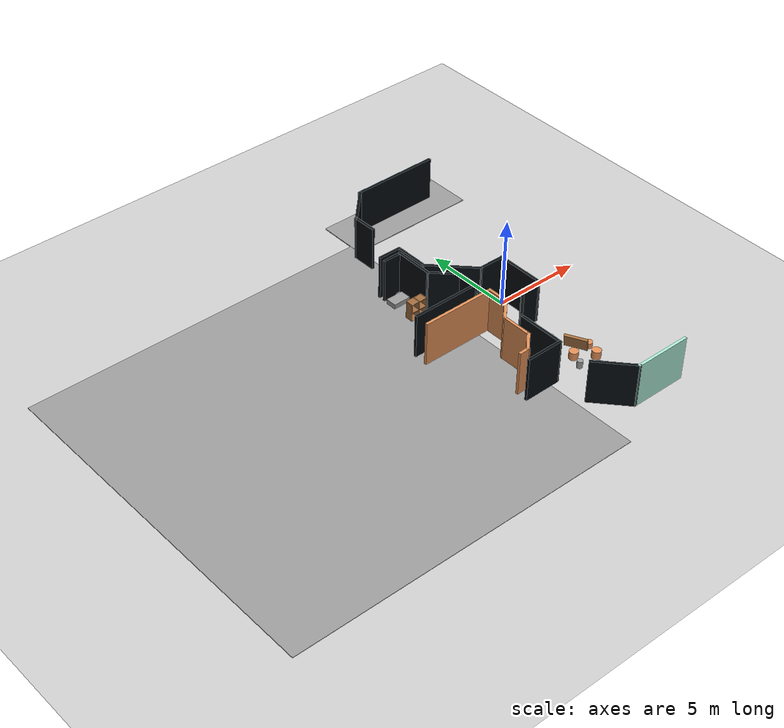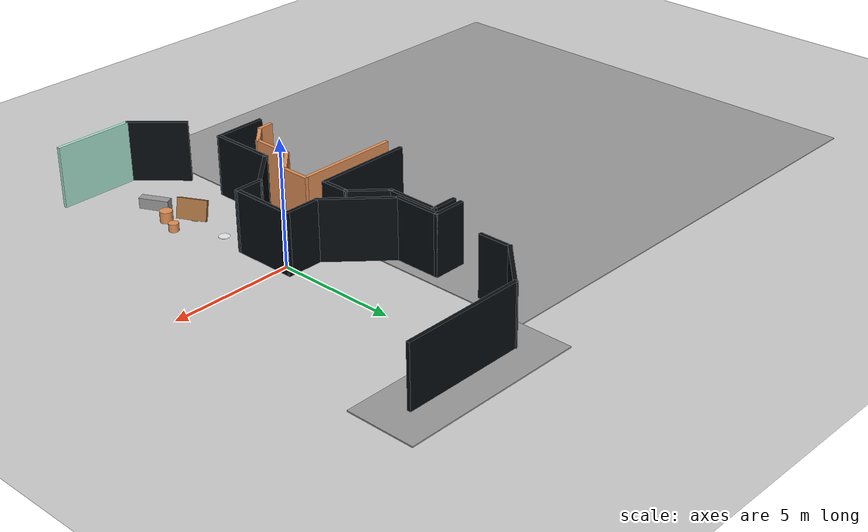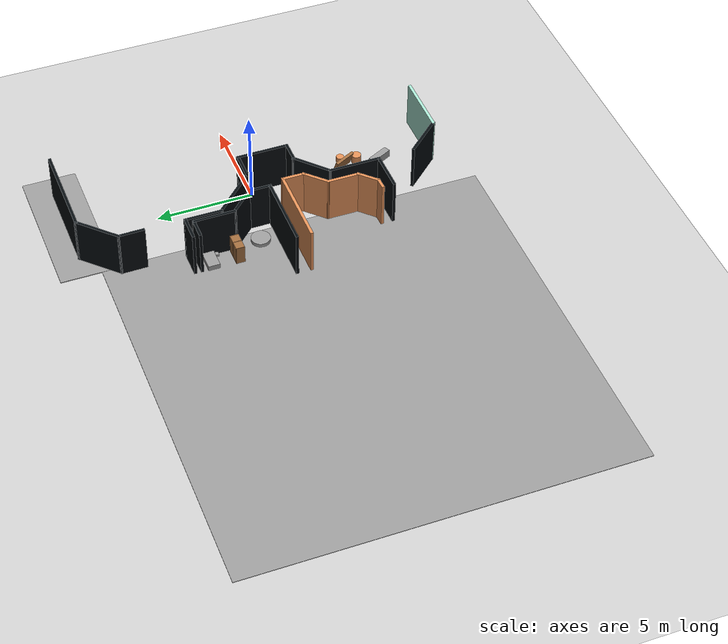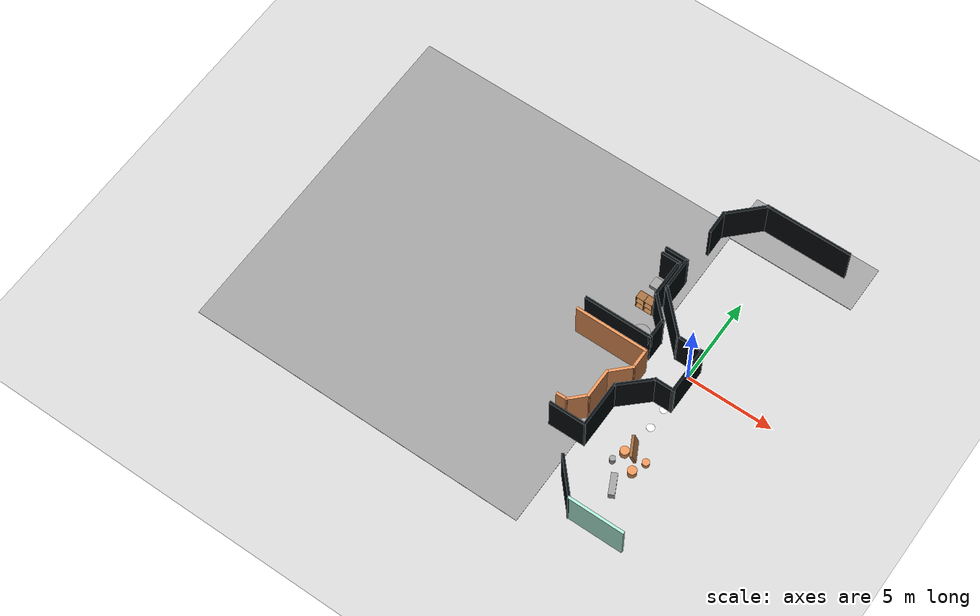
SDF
<sdf version="1.7">
 <world name="default">
  <model name="ground_plane">
   <static>1</static>
   <link name="link">
    <collision name="collision">
     <geometry><plane><normal>0 0 1</normal><size>100 100</size></plane></geometry>
     <surface><friction><ode><mu>100</mu><mu2>50</mu2></ode></friction></surface>
    </collision>
    <visual name="visual">
     <cast_shadows>0</cast_shadows>
     <geometry><plane><normal>0 0 1</normal><size>100 100</size></plane></geometry>
     <material>
      <script><uri>file://media/materials/scripts/gazebo.material</uri><name>Gazebo/Grey</name></script>
      <ambient>0.55 0.55 0.53 1</ambient>
      <diffuse>0.55 0.55 0.53 1</diffuse>
      <specular>0.08 0.08 0.08 1</specular>
      <emissive>0 0 0 1</emissive>
     </material>
    </visual>
   </link>
  </model>
  <model name="among_us_world">
   <pose>0.133216 -0.12311 0 0 -0 0</pose>
   <link name="Wall_0">
    <collision name="Wall_0_Collision">
     <geometry><box><size>5 0.15 2.5</size></box></geometry>
     <pose>0 0 1.25 0 -0 0</pose>
    </collision>
    <visual name="Wall_0_Visual">
     <pose>0 0 1.25 0 -0 0</pose>
     <geometry><box><size>5 0.15 2.5</size></box></geometry>
     <material>
      <script><uri>file://media/materials/scripts/gazebo.material</uri><name>Gazebo/Motorway</name></script>
      <ambient>0.025 0.045 0.06 1</ambient>
      <diffuse>0.025 0.045 0.06 1</diffuse>
      <specular>0.08 0.08 0.08 1</specular>
      <emissive>0 0 0 1</emissive>
     </material>
     <meta><layer>0</layer></meta>
    </visual>
    <pose>0.883234 9.56872 0 0 -0 0</pose>
   </link>
   <link name="Wall_104">
    <collision name="Wall_104_Collision">
     <geometry><box><size>4 0.15 2.5</size></box></geometry>
     <pose>0 0 1.25 0 -0 0</pose>
    </collision>
    <visual name="Wall_104_Visual">
     <pose>0 0 1.25 0 -0 0</pose>
     <geometry><box><size>4 0.15 2.5</size></box></geometry>
     <material>
      <script><uri>file://media/materials/scripts/gazebo.material</uri><name>Gazebo/Motorway</name></script>
      <ambient>0.025 0.045 0.06 1</ambient>
      <diffuse>0.025 0.045 0.06 1</diffuse>
      <specular>0.08 0.08 0.08 1</specular>
      <emissive>0 0 0 1</emissive>
     </material>
     <meta><layer>0</layer></meta>
    </visual>
    <pose>-4.28169 -0.147272 0 0 -0 0</pose>
   </link>
   <link name="Wall_105">
    <collision name="Wall_105_Collision">
     <geometry><box><size>1.25 0.15 2.5</size></box></geometry>
     <pose>0 0 1.25 0 -0 0</pose>
    </collision>
    <visual name="Wall_105_Visual">
     <pose>0 0 1.25 0 -0 0</pose>
     <geometry><box><size>1.25 0.15 2.5</size></box></geometry>
     <material>
      <script><uri>file://media/materials/scripts/gazebo.material</uri><name>Gazebo/Motorway</name></script>
      <ambient>0.025 0.045 0.06 1</ambient>
      <diffuse>0.025 0.045 0.06 1</diffuse>
      <specular>0.08 0.08 0.08 1</specular>
      <emissive>0 0 0 1</emissive>
     </material>
     <meta><layer>0</layer></meta>
    </visual>
    <pose>-2.35669 0.402728 0 0 -0 1.5708</pose>
   </link>
   <link name="Wall_106">
    <collision name="Wall_106_Collision">
     <geometry><box><size>1.75 0.15 2.5</size></box></geometry>
     <pose>0 0 1.25 0 -0 0</pose>
    </collision>
    <visual name="Wall_106_Visual">
     <pose>0 0 1.25 0 -0 0</pose>
     <geometry><box><size>1.75 0.15 2.5</size></box></geometry>
     <material>
      <script><uri>file://media/materials/scripts/gazebo.material</uri><name>Gazebo/Motorway</name></script>
      <ambient>0.025 0.045 0.06 1</ambient>
      <diffuse>0.025 0.045 0.06 1</diffuse>
      <specular>0.08 0.08 0.08 1</specular>
      <emissive>0 0 0 1</emissive>
     </material>
     <meta><layer>0</layer></meta>
    </visual>
    <pose>-2.92238 1.51841 0 0 -0 2.35619</pose>
   </link>
   <link name="Wall_108">
    <collision name="Wall_108_Collision">
     <geometry><box><size>2.25 0.15 2.5</size></box></geometry>
     <pose>0 0 1.25 0 -0 0</pose>
    </collision>
    <visual name="Wall_108_Visual">
     <pose>0 0 1.25 0 -0 0</pose>
     <geometry><box><size>2.25 0.15 2.5</size></box></geometry>
     <material>
      <script><uri>file://media/materials/scripts/gazebo.material</uri><name>Gazebo/Motorway</name></script>
      <ambient>0.025 0.045 0.06 1</ambient>
      <diffuse>0.025 0.045 0.06 1</diffuse>
      <specular>0.08 0.08 0.08 1</specular>
      <emissive>0 0 0 1</emissive>
     </material>
     <meta><layer>0</layer></meta>
    </visual>
    <pose>-3.48806 3.1341 0 0 -0 1.5708</pose>
   </link>
   <link name="Wall_109">
    <collision name="Wall_109_Collision">
     <geometry><box><size>1.12677 0.15 2.5</size></box></geometry>
     <pose>0 0 1.25 0 -0 0</pose>
    </collision>
    <visual name="Wall_109_Visual">
     <pose>0 0 1.25 0 -0 0</pose>
     <geometry><box><size>1.12677 0.15 2.5</size></box></geometry>
     <material>
      <script><uri>file://media/materials/scripts/gazebo.material</uri><name>Gazebo/Motorway</name></script>
      <ambient>0.025 0.045 0.06 1</ambient>
      <diffuse>0.025 0.045 0.06 1</diffuse>
      <specular>0.08 0.08 0.08 1</specular>
      <emissive>0 0 0 1</emissive>
     </material>
     <meta><layer>0</layer></meta>
    </visual>
    <pose>-3.97634 4.1841 0 0 -0 3.14159</pose>
   </link>
   <link name="Wall_111">
    <collision name="Wall_111_Collision">
     <geometry><box><size>1.37673 0.15 2.5</size></box></geometry>
     <pose>0 0 1.25 0 -0 0</pose>
    </collision>
    <visual name="Wall_111_Visual">
     <pose>0 0 1.25 0 -0 0</pose>
     <geometry><box><size>1.37673 0.15 2.5</size></box></geometry>
     <material>
      <script><uri>file://media/materials/scripts/gazebo.material</uri><name>Gazebo/Motorway</name></script>
      <ambient>0.025 0.045 0.06 1</ambient>
      <diffuse>0.025 0.045 0.06 1</diffuse>
      <specular>0.08 0.08 0.08 1</specular>
      <emissive>0 0 0 1</emissive>
     </material>
     <meta><layer>0</layer></meta>
    </visual>
    <pose>-3.85134 4.5341 0 0 -0 0</pose>
   </link>
   <link name="Wall_112">
    <collision name="Wall_112_Collision">
     <geometry><box><size>2 0.15 2.5</size></box></geometry>
     <pose>0 0 1.25 0 -0 0</pose>
    </collision>
    <visual name="Wall_112_Visual">
     <pose>0 0 1.25 0 -0 0</pose>
     <geometry><box><size>2 0.15 2.5</size></box></geometry>
     <material>
      <script><uri>file://media/materials/scripts/gazebo.material</uri><name>Gazebo/Motorway</name></script>
      <ambient>0.025 0.045 0.06 1</ambient>
      <diffuse>0.025 0.045 0.06 1</diffuse>
      <specular>0.08 0.08 0.08 1</specular>
      <emissive>0 0 0 1</emissive>
     </material>
     <meta><layer>0</layer></meta>
    </visual>
    <pose>-3.23806 3.6091 0 0 -0 -1.5708</pose>
   </link>
   <link name="Wall_114">
    <collision name="Wall_114_Collision">
     <geometry><box><size>3 0.15 2.5</size></box></geometry>
     <pose>0 0 1.25 0 -0 0</pose>
    </collision>
    <visual name="Wall_114_Visual">
     <pose>0 0 1.25 0 -0 0</pose>
     <geometry><box><size>3 0.15 2.5</size></box></geometry>
     <material>
      <script><uri>file://media/materials/scripts/gazebo.material</uri><name>Gazebo/Motorway</name></script>
      <ambient>0.025 0.045 0.06 1</ambient>
      <diffuse>0.025 0.045 0.06 1</diffuse>
      <specular>0.08 0.08 0.08 1</specular>
      <emissive>0 0 0 1</emissive>
     </material>
     <meta><layer>0</layer></meta>
    </visual>
    <pose>-2.23043 1.67647 0 0 -0 -0.785398</pose>
   </link>
   <link name="Wall_115">
    <collision name="Wall_115_Collision">
     <geometry><box><size>1.5655 0.15 2.5</size></box></geometry>
     <pose>0 0 1.25 0 -0 0</pose>
    </collision>
    <visual name="Wall_115_Visual">
     <pose>0 0 1.25 0 -0 0</pose>
     <geometry><box><size>1.5655 0.15 2.5</size></box></geometry>
     <material>
      <script><uri>file://media/materials/scripts/gazebo.material</uri><name>Gazebo/Motorway</name></script>
      <ambient>0.025 0.045 0.06 1</ambient>
      <diffuse>0.025 0.045 0.06 1</diffuse>
      <specular>0.08 0.08 0.08 1</specular>
      <emissive>0 0 0 1</emissive>
     </material>
     <meta><layer>0</layer></meta>
    </visual>
    <pose>-0.515099 0.662156 0 0 -0 -0.00945</pose>
   </link>
   <link name="Wall_116">
    <collision name="Wall_116_Collision">
     <geometry><box><size>2.75 0.15 2.5</size></box></geometry>
     <pose>0 0 1.25 0 -0 0</pose>
    </collision>
    <visual name="Wall_116_Visual">
     <pose>0 0 1.25 0 -0 0</pose>
     <geometry><box><size>2.75 0.15 2.5</size></box></geometry>
     <material>
      <script><uri>file://media/materials/scripts/gazebo.material</uri><name>Gazebo/Motorway</name></script>
      <ambient>0.025 0.045 0.06 1</ambient>
      <diffuse>0.025 0.045 0.06 1</diffuse>
      <specular>0.08 0.08 0.08 1</specular>
      <emissive>0 0 0 1</emissive>
     </material>
     <meta><layer>0</layer></meta>
    </visual>
    <pose>0.19261 -0.637844 0 0 -0 -1.5708</pose>
   </link>
   <link name="Wall_146">
    <collision name="Wall_146_Collision">
     <geometry><box><size>4.25 0.15 2.5</size></box></geometry>
     <pose>0 0 1.25 0 -0 0</pose>
    </collision>
    <visual name="Wall_146_Visual">
     <pose>0 0 1.25 0 -0 0</pose>
     <geometry><box><size>4.25 0.15 2.5</size></box></geometry>
     <material>
      <script><uri>file://media/materials/scripts/gazebo.material</uri><name>Gazebo/Motorway</name></script>
      <ambient>0.88 0.56 0.34 1</ambient>
      <diffuse>0.88 0.56 0.34 1</diffuse>
      <specular>0.08 0.08 0.08 1</specular>
      <emissive>0 0 0 1</emissive>
     </material>
     <meta><layer>0</layer></meta>
    </visual>
    <pose>-4.16277 -0.905283 0 0 -0 0</pose>
   </link>
   <link name="Wall_147">
    <collision name="Wall_147_Collision">
     <geometry><box><size>1.25 0.15 2.5</size></box></geometry>
     <pose>0 0 1.25 0 -0 0</pose>
    </collision>
    <visual name="Wall_147_Visual">
     <pose>0 0 1.25 0 -0 0</pose>
     <geometry><box><size>1.25 0.15 2.5</size></box></geometry>
     <material>
      <script><uri>file://media/materials/scripts/gazebo.material</uri><name>Gazebo/Motorway</name></script>
      <ambient>0.88 0.56 0.34 1</ambient>
      <diffuse>0.88 0.56 0.34 1</diffuse>
      <specular>0.08 0.08 0.08 1</specular>
      <emissive>0 0 0 1</emissive>
     </material>
     <meta><layer>0</layer></meta>
    </visual>
    <pose>-2.11277 -1.45528 0 0 -0 -1.5708</pose>
   </link>
   <link name="Wall_148">
    <collision name="Wall_148_Collision">
     <geometry><box><size>1.5 0.15 2.5</size></box></geometry>
     <pose>0 0 1.25 0 -0 0</pose>
    </collision>
    <visual name="Wall_148_Visual">
     <pose>0 0 1.25 0 -0 0</pose>
     <geometry><box><size>1.5 0.15 2.5</size></box></geometry>
     <material>
      <script><uri>file://media/materials/scripts/gazebo.material</uri><name>Gazebo/Motorway</name></script>
      <ambient>0.88 0.56 0.34 1</ambient>
      <diffuse>0.88 0.56 0.34 1</diffuse>
      <specular>0.08 0.08 0.08 1</specular>
      <emissive>0 0 0 1</emissive>
     </material>
     <meta><layer>0</layer></meta>
    </visual>
    <pose>-2.59027 -2.48228 0 0 -0 -2.35672</pose>
   </link>
   <link name="Wall_149">
    <collision name="Wall_149_Collision">
     <geometry><box><size>1.75 0.15 2.5</size></box></geometry>
     <pose>0 0 1.25 0 -0 0</pose>
    </collision>
    <visual name="Wall_149_Visual">
     <pose>0 0 1.25 0 -0 0</pose>
     <geometry><box><size>1.75 0.15 2.5</size></box></geometry>
     <material>
      <script><uri>file://media/materials/scripts/gazebo.material</uri><name>Gazebo/Motorway</name></script>
      <ambient>0.88 0.56 0.34 1</ambient>
      <diffuse>0.88 0.56 0.34 1</diffuse>
      <specular>0.08 0.08 0.08 1</specular>
      <emissive>0 0 0 1</emissive>
     </material>
     <meta><layer>0</layer></meta>
    </visual>
    <pose>-3.06777 -3.75928 0 0 -0 -1.5708</pose>
   </link>
   <link name="Wall_150">
    <collision name="Wall_150_Collision">
     <geometry><box><size>1.25 0.15 2.5</size></box></geometry>
     <pose>0 0 1.25 0 -0 0</pose>
    </collision>
    <visual name="Wall_150_Visual">
     <pose>0 0 1.25 0 -0 0</pose>
     <geometry><box><size>1.25 0.15 2.5</size></box></geometry>
     <material>
      <script><uri>file://media/materials/scripts/gazebo.material</uri><name>Gazebo/Motorway</name></script>
      <ambient>0.88 0.56 0.34 1</ambient>
      <diffuse>0.88 0.56 0.34 1</diffuse>
      <specular>0.08 0.08 0.08 1</specular>
      <emissive>0 0 0 1</emissive>
     </material>
     <meta><layer>0</layer></meta>
    </visual>
    <pose>-3.45677 -4.94828 0 0 -0 -2.35619</pose>
   </link>
   <link name="Wall_153">
    <collision name="Wall_153_Collision">
     <geometry><box><size>0.660076 0.15 2.5</size></box></geometry>
     <pose>0 0 1.25 0 -0 0</pose>
    </collision>
    <visual name="Wall_153_Visual">
     <pose>0 0 1.25 0 -0 0</pose>
     <geometry><box><size>0.660076 0.15 2.5</size></box></geometry>
     <material>
      <script><uri>file://media/materials/scripts/gazebo.material</uri><name>Gazebo/Motorway</name></script>
      <ambient>0.88 0.56 0.34 1</ambient>
      <diffuse>0.88 0.56 0.34 1</diffuse>
      <specular>0.08 0.08 0.08 1</specular>
      <emissive>0 0 0 1</emissive>
     </material>
     <meta><layer>0</layer></meta>
    </visual>
    <pose>-4.10077 -5.34628 0 0 -0 -3.10631</pose>
   </link>
   <link name="Wall_155">
    <collision name="Wall_155_Collision">
     <geometry><box><size>2.16008 0.15 2.5</size></box></geometry>
     <pose>0 0 1.25 0 -0 0</pose>
    </collision>
    <visual name="Wall_155_Visual">
     <pose>0 0 1.25 0 -0 0</pose>
     <geometry><box><size>2.16008 0.15 2.5</size></box></geometry>
     <material>
      <script><uri>file://media/materials/scripts/gazebo.material</uri><name>Gazebo/Motorway</name></script>
      <ambient>0.025 0.045 0.06 1</ambient>
      <diffuse>0.025 0.045 0.06 1</diffuse>
      <specular>0.08 0.08 0.08 1</specular>
      <emissive>0 0 0 1</emissive>
     </material>
     <meta><layer>0</layer></meta>
    </visual>
    <pose>-3.35065 -5.9463 0 0 -0 0.008937</pose>
   </link>
   <link name="Wall_156">
    <collision name="Wall_156_Collision">
     <geometry><box><size>2.75 0.15 2.5</size></box></geometry>
     <pose>0 0 1.25 0 -0 0</pose>
    </collision>
    <visual name="Wall_156_Visual">
     <pose>0 0 1.25 0 -0 0</pose>
     <geometry><box><size>2.75 0.15 2.5</size></box></geometry>
     <material>
      <script><uri>file://media/materials/scripts/gazebo.material</uri><name>Gazebo/Motorway</name></script>
      <ambient>0.025 0.045 0.06 1</ambient>
      <diffuse>0.025 0.045 0.06 1</diffuse>
      <specular>0.08 0.08 0.08 1</specular>
      <emissive>0 0 0 1</emissive>
     </material>
     <meta><layer>0</layer></meta>
    </visual>
    <pose>-2.34553 -4.63732 0 0 -0 1.5708</pose>
   </link>
   <link name="Wall_195">
    <collision name="Wall_195_Collision">
     <geometry><box><size>2.43279 0.15 2.5</size></box></geometry>
     <pose>0 0 1.25 0 -0 0</pose>
    </collision>
    <visual name="Wall_195_Visual">
     <pose>0 0 1.25 0 -0 0</pose>
     <geometry><box><size>2.43279 0.15 2.5</size></box></geometry>
     <material>
      <script><uri>file://media/materials/scripts/gazebo.material</uri><name>Gazebo/Motorway</name></script>
      <ambient>0.025 0.045 0.06 1</ambient>
      <diffuse>0.025 0.045 0.06 1</diffuse>
      <specular>0.08 0.08 0.08 1</specular>
      <emissive>0 0 0 1</emissive>
     </material>
     <meta><layer>0</layer></meta>
    </visual>
    <pose>-1.52341 -8.72218 0 0 -0 -0.835926</pose>
   </link>
   <link name="Wall_202">
    <collision name="Wall_202_Collision">
     <geometry><box><size>3.25 0.15 2.5</size></box></geometry>
     <pose>0 0 1.25 0 -0 0</pose>
    </collision>
    <visual name="Wall_202_Visual">
     <pose>0 0 1.25 0 -0 0</pose>
     <geometry><box><size>3.25 0.15 2.5</size></box></geometry>
     <material>
      <script><uri>file://media/materials/scripts/gazebo.material</uri><name>Gazebo/Motorway</name></script>
      <ambient>0.66 0.90 0.82 1</ambient>
      <diffuse>0.66 0.90 0.82 1</diffuse>
      <specular>0.08 0.08 0.08 1</specular>
      <emissive>0 0 0 1</emissive>
     </material>
     <meta><layer>0</layer></meta>
    </visual>
    <pose>0.791885 -9.56227 0 0 -0 0</pose>
   </link>
   <link name="Wall_204">
    <collision name="Wall_204_Collision">
     <geometry><box><size>1.18966 0.15 2.5</size></box></geometry>
     <pose>0 0 1.25 0 -0 0</pose>
    </collision>
    <visual name="Wall_204_Visual">
     <pose>0 0 1.25 0 -0 0</pose>
     <geometry><box><size>1.18966 0.15 2.5</size></box></geometry>
     <material>
      <script><uri>file://media/materials/scripts/gazebo.material</uri><name>Gazebo/Motorway</name></script>
      <ambient>0.025 0.045 0.06 1</ambient>
      <diffuse>0.025 0.045 0.06 1</diffuse>
      <specular>0.08 0.08 0.08 1</specular>
      <emissive>0 0 0 1</emissive>
     </material>
     <meta><layer>0</layer></meta>
    </visual>
    <pose>-0.32722 -1.93701 0 0 -0 3.14</pose>
   </link>
   <link name="Wall_206">
    <collision name="Wall_206_Collision">
     <geometry><box><size>2.20149 0.15 2.5</size></box></geometry>
     <pose>0 0 1.25 0 -0 0</pose>
    </collision>
    <visual name="Wall_206_Visual">
     <pose>0 0 1.25 0 -0 0</pose>
     <geometry><box><size>2.20149 0.15 2.5</size></box></geometry>
     <material>
      <script><uri>file://media/materials/scripts/gazebo.material</uri><name>Gazebo/Motorway</name></script>
      <ambient>0.025 0.045 0.06 1</ambient>
      <diffuse>0.025 0.045 0.06 1</diffuse>
      <specular>0.08 0.08 0.08 1</specular>
      <emissive>0 0 0 1</emissive>
     </material>
     <meta><layer>0</layer></meta>
    </visual>
    <pose>-1.59629 -2.63675 0 0 -0 0.751837</pose>
   </link>
   <link name="Wall_29">
    <collision name="Wall_29_Collision">
     <geometry><box><size>2.5 0.15 2.5</size></box></geometry>
     <pose>0 0 1.25 0 -0 0</pose>
    </collision>
    <visual name="Wall_29_Visual">
     <pose>0 0 1.25 0 -0 0</pose>
     <geometry><box><size>2.5 0.15 2.5</size></box></geometry>
     <material>
      <script><uri>file://media/materials/scripts/gazebo.material</uri><name>Gazebo/Motorway</name></script>
      <ambient>0.025 0.045 0.06 1</ambient>
      <diffuse>0.025 0.045 0.06 1</diffuse>
      <specular>0.08 0.08 0.08 1</specular>
      <emissive>0 0 0 1</emissive>
     </material>
     <meta><layer>0</layer></meta>
    </visual>
    <pose>-2.37241 8.73794 0 0 -0 -2.35611</pose>
   </link>
   <link name="Wall_30">
    <collision name="Wall_30_Collision">
     <geometry><box><size>1.4062 0.15 2.5</size></box></geometry>
     <pose>0 0 1.25 0 -0 0</pose>
    </collision>
    <visual name="Wall_30_Visual">
     <pose>0 0 1.25 0 -0 0</pose>
     <geometry><box><size>1.4062 0.15 2.5</size></box></geometry>
     <material>
      <script><uri>file://media/materials/scripts/gazebo.material</uri><name>Gazebo/Motorway</name></script>
      <ambient>0.025 0.045 0.06 1</ambient>
      <diffuse>0.025 0.045 0.06 1</diffuse>
      <specular>0.08 0.08 0.08 1</specular>
      <emissive>0 0 0 1</emissive>
     </material>
     <meta><layer>0</layer></meta>
    </visual>
    <pose>-3.19527 7.27912 0 0 -0 -1.55841</pose>
   </link>
   <static>1</static>
  </model>
  <model name="Construction Barrel">
   <link name="link">
    <inertial>
     <pose>0 0 0.4 0 -0 0</pose>
     <mass>500</mass>
     <inertia><ixx>51.2096</ixx><iyy>51.2096</iyy><izz>25</izz><ixy>0</ixy><ixz>0</ixz><iyz>0</iyz></inertia>
    </inertial>
    <collision name="collision">
     <geometry><cylinder><radius>0.25</radius><length>0.8</length></cylinder></geometry>
    </collision>
    <visual name="visual">
     <geometry><cylinder><radius>0.25</radius><length>0.8</length></cylinder></geometry>
     <material>
      <script><uri>file://media/materials/scripts/gazebo.material</uri><name>Gazebo/Grey</name></script>
      <ambient>0.88 0.56 0.34 1</ambient>
      <diffuse>0.88 0.56 0.34 1</diffuse>
      <specular>0.08 0.08 0.08 1</specular>
      <emissive>0 0 0 1</emissive>
     </material>
    </visual>
   </link>
   <pose>-0.274787 -5.3139 0.00999 1e-06 -0 -0.237848</pose>
  </model>
  <model name="euro_pallet_clone">
   <link name="link">
    <inertial>
     <mass>20</mass>
     <inertia><ixx>2.43</ixx><ixy>0</ixy><ixz>0</ixz><iyy>1.1</iyy><iyz>0</iyz><izz>3.47</izz></inertia>
    </inertial>
    <collision name="collision">
     <pose>0 0 0.05 0 -0 0</pose>
     <geometry><box><size>1.2 0.8 0.15</size></box></geometry>
    </collision>
    <visual name="visual">
     <pose>0 0 0.05 0 -0 0</pose>
     <geometry><box><size>1.2 0.8 0.15</size></box></geometry>
     <material>
      <script><uri>file://media/materials/scripts/gazebo.material</uri><name>Gazebo/Grey</name></script>
      <ambient>0.62 0.42 0.24 1</ambient>
      <diffuse>0.62 0.42 0.24 1</diffuse>
      <specular>0.08 0.08 0.08 1</specular>
      <emissive>0 0 0 1</emissive>
     </material>
    </visual>
   </link>
   <pose>0.144253 -5.03348 0.603853 -1.87648 -0 2.0455</pose>
  </model>
  <model name="Construction Barrel_clone">
   <link name="link">
    <inertial>
     <pose>0 0 0.4 0 -0 0</pose>
     <mass>500</mass>
     <inertia><ixx>51.2096</ixx><iyy>51.2096</iyy><izz>25</izz><ixy>0</ixy><ixz>0</ixz><iyz>0</iyz></inertia>
    </inertial>
    <collision name="collision">
     <geometry><cylinder><radius>0.25</radius><length>0.8</length></cylinder></geometry>
    </collision>
    <visual name="visual">
     <geometry><cylinder><radius>0.25</radius><length>0.8</length></cylinder></geometry>
     <material>
      <script><uri>file://media/materials/scripts/gazebo.material</uri><name>Gazebo/Grey</name></script>
      <ambient>0.88 0.56 0.34 1</ambient>
      <diffuse>0.88 0.56 0.34 1</diffuse>
      <specular>0.08 0.08 0.08 1</specular>
      <emissive>0 0 0 1</emissive>
     </material>
    </visual>
   </link>
   <pose>0.623823 -5.9827 0.009999 3e-06 -8e-06 -0.35048</pose>
  </model>
  <model name="fire_hydrant">
   <static>1</static>
   <link name="link">
    <collision name="collision">
     <geometry><cylinder><radius>0.16</radius><length>0.75</length></cylinder></geometry>
    </collision>
    <visual name="visual">
     <geometry><cylinder><radius>0.16</radius><length>0.75</length></cylinder></geometry>
     <material>
      <script><uri>file://media/materials/scripts/gazebo.material</uri><name>Gazebo/Grey</name></script>
      <ambient>0.42 0.43 0.42 1</ambient>
      <diffuse>0.42 0.43 0.42 1</diffuse>
      <specular>0.08 0.08 0.08 1</specular>
      <emissive>0 0 0 1</emissive>
     </material>
    </visual>
   </link>
   <pose>-0.542934 -5.99613 0 0 -0 0</pose>
  </model>
  <model name="asphalt_plane">
   <static>1</static>
   <link name="link">
    <collision name="collision"><geometry><box><size>20 20 0.1</size></box></geometry></collision>
    <visual name="visual">
     <cast_shadows>0</cast_shadows>
     <geometry><box><size>20 20 0.1</size></box></geometry>
     <material>
      <script><uri>file://media/materials/scripts/gazebo.material</uri><name>Gazebo/Grey</name></script>
      <ambient>0.23 0.23 0.22 1</ambient>
      <diffuse>0.23 0.23 0.22 1</diffuse>
      <specular>0.08 0.08 0.08 1</specular>
      <emissive>0 0 0 1</emissive>
     </material>
    </visual>
   </link>
   <pose>-12.6134 -1.31009 -0.045514 0 -0 0</pose>
  </model>
  <model name="bed_clone_0">
   <link name="link_1">
    <inertial>
     <mass>0.166557</mass>
     <inertia>
      <ixx>0.00618823</ixx>
      <ixy>0</ixy>
      <ixz>0</ixz>
      <iyy>0.0149173</iyy>
      <iyz>0</iyz>
      <izz>0.0190304</izz>
     </inertia>
    </inertial>
    <pose>0.268517 -0.007523 0.053425 0 -0 0</pose>
    <visual name="visual">
     <geometry><box><size>1 0.609172 0.273416</size></box></geometry>
     <material>
      <lighting>1</lighting>
      <script><uri>file://media/materials/scripts/gazebo.material</uri><name>Gazebo/Grey</name></script>
      <shader type="pixel"><normal_map>__default__</normal_map></shader>
      <ambient>0.42 0.43 0.42 1</ambient>
      <diffuse>0.42 0.43 0.42 1</diffuse>
      <specular>0.08 0.08 0.08 1</specular>
      <emissive>0 0 0 1</emissive>
     </material>
    </visual>
    <collision name="collision">
     <geometry><box><size>1 0.609172 0.273416</size></box></geometry>
     <surface>
      <friction>
       <ode><mu>1</mu><mu2>1</mu2><fdir1>0 0 0</fdir1><slip1>0</slip1><slip2>0</slip2></ode>
       <torsional>
        <coefficient>1</coefficient>
        <patch_radius>0</patch_radius>
        <surface_radius>0</surface_radius>
        <use_patch_radius>1</use_patch_radius>
        <ode><slip>0</slip></ode>
       </torsional>
      </friction>
      <bounce><restitution_coefficient>0</restitution_coefficient><threshold>1e+06</threshold></bounce>
      <contact>
       <collide_without_contact>0</collide_without_contact>
       <collide_without_contact_bitmask>1</collide_without_contact_bitmask>
       <collide_bitmask>1</collide_bitmask>
       <ode>
        <soft_cfm>0</soft_cfm>
        <soft_erp>0.2</soft_erp>
        <kp>1e+13</kp>
        <kd>1</kd>
        <max_vel>0.01</max_vel>
        <min_depth>0</min_depth>
       </ode>
       <bullet>
        <split_impulse>1</split_impulse>
        <split_impulse_penetration_threshold>-0.01</split_impulse_penetration_threshold>
        <soft_cfm>0</soft_cfm>
        <soft_erp>0.2</soft_erp>
        <kp>1e+13</kp>
        <kd>1</kd>
       </bullet>
      </contact>
     </surface>
    </collision>
   </link>
   <link name="link_2">
    <inertial>
     <mass>0.00661892</mass>
     <inertia>
      <ixx>3.651e-05</ixx>
      <ixy>0</ixy>
      <ixz>0</ixz>
      <iyy>3.722e-05</iyy>
      <iyz>0</iyz>
      <izz>4.631e-05</izz>
     </inertia>
    </inertial>
    <pose>-0.144333 -0.400103 -0.02691 0 -0 0</pose>
    <visual name="visual">
     <geometry><box><size>0.206441 0.203314 0.157681</size></box></geometry>
     <material>
      <lighting>1</lighting>
      <script><uri>file://media/materials/scripts/gazebo.material</uri><name>Gazebo/Grey</name></script>
      <shader type="pixel"><normal_map>__default__</normal_map></shader>
      <ambient>0.42 0.43 0.42 1</ambient>
      <diffuse>0.42 0.43 0.42 1</diffuse>
      <specular>0.08 0.08 0.08 1</specular>
      <emissive>0 0 0 1</emissive>
     </material>
    </visual>
    <collision name="collision">
     <geometry><box><size>0.206441 0.203314 0.157681</size></box></geometry>
     <surface>
      <friction>
       <ode><mu>1</mu><mu2>1</mu2><fdir1>0 0 0</fdir1><slip1>0</slip1><slip2>0</slip2></ode>
       <torsional>
        <coefficient>1</coefficient>
        <patch_radius>0</patch_radius>
        <surface_radius>0</surface_radius>
        <use_patch_radius>1</use_patch_radius>
        <ode><slip>0</slip></ode>
       </torsional>
      </friction>
      <bounce><restitution_coefficient>0</restitution_coefficient><threshold>1e+06</threshold></bounce>
      <contact>
       <collide_without_contact>0</collide_without_contact>
       <collide_without_contact_bitmask>1</collide_without_contact_bitmask>
       <collide_bitmask>1</collide_bitmask>
       <ode>
        <soft_cfm>0</soft_cfm>
        <soft_erp>0.2</soft_erp>
        <kp>1e+13</kp>
        <kd>1</kd>
        <max_vel>0.01</max_vel>
        <min_depth>0</min_depth>
       </ode>
       <bullet>
        <split_impulse>1</split_impulse>
        <split_impulse_penetration_threshold>-0.01</split_impulse_penetration_threshold>
        <soft_cfm>0</soft_cfm>
        <soft_erp>0.2</soft_erp>
        <kp>1e+13</kp>
        <kd>1</kd>
       </bullet>
      </contact>
     </surface>
    </collision>
   </link>
   <link name="link_2_clone">
    <inertial>
     <mass>0.00661892</mass>
     <inertia>
      <ixx>3.651e-05</ixx>
      <ixy>0</ixy>
      <ixz>0</ixz>
      <iyy>3.722e-05</iyy>
      <iyz>0</iyz>
      <izz>4.631e-05</izz>
     </inertia>
    </inertial>
    <pose>-0.124183 0.407627 -0.026515 0 -0 0</pose>
    <visual name="visual">
     <geometry><box><size>0.206441 0.203314 0.157681</size></box></geometry>
     <material>
      <lighting>1</lighting>
      <script><uri>file://media/materials/scripts/gazebo.material</uri><name>Gazebo/Grey</name></script>
      <shader type="pixel"><normal_map>__default__</normal_map></shader>
      <ambient>0.42 0.43 0.42 1</ambient>
      <diffuse>0.42 0.43 0.42 1</diffuse>
      <specular>0.08 0.08 0.08 1</specular>
      <emissive>0 0 0 1</emissive>
     </material>
    </visual>
    <collision name="collision">
     <geometry><box><size>0.206441 0.203314 0.157681</size></box></geometry>
     <surface>
      <friction>
       <ode><mu>1</mu><mu2>1</mu2><fdir1>0 0 0</fdir1><slip1>0</slip1><slip2>0</slip2></ode>
       <torsional>
        <coefficient>1</coefficient>
        <patch_radius>0</patch_radius>
        <surface_radius>0</surface_radius>
        <use_patch_radius>1</use_patch_radius>
        <ode><slip>0</slip></ode>
       </torsional>
      </friction>
      <bounce><restitution_coefficient>0</restitution_coefficient><threshold>1e+06</threshold></bounce>
      <contact>
       <collide_without_contact>0</collide_without_contact>
       <collide_without_contact_bitmask>1</collide_without_contact_bitmask>
       <collide_bitmask>1</collide_bitmask>
       <ode>
        <soft_cfm>0</soft_cfm>
        <soft_erp>0.2</soft_erp>
        <kp>1e+13</kp>
        <kd>1</kd>
        <max_vel>0.01</max_vel>
        <min_depth>0</min_depth>
       </ode>
       <bullet>
        <split_impulse>1</split_impulse>
        <split_impulse_penetration_threshold>-0.01</split_impulse_penetration_threshold>
        <soft_cfm>0</soft_cfm>
        <soft_erp>0.2</soft_erp>
        <kp>1e+13</kp>
        <kd>1</kd>
       </bullet>
      </contact>
     </surface>
    </collision>
   </link>
   <static>1</static>
   <pose>-3.68143 3.45279 0.093275 2.7e-05 0 -3.13537</pose>
  </model>
  <model name="cabinet">
   <static>1</static>
   <link name="cabinet_bottom_plate">
    <inertial>
     <pose>0 0 -1 0 -0 0</pose>
     <inertia><ixx>2.05</ixx><ixy>0</ixy><ixz>0</ixz><iyy>2.05</iyy><iyz>0</iyz><izz>2.05</izz></inertia>
     <mass>25</mass>
    </inertial>
    <collision name="cabinet_bottom_plate_geom">
     <pose>0 0 0.01 0 -0 0</pose>
     <geometry><box><size>0.45 0.45 0.02</size></box></geometry>
    </collision>
    <visual name="cabinet_bottom_plate_geom_visual">
     <pose>0 0 0.01 0 -0 0</pose>
     <geometry><box><size>0.45 0.45 0.02</size></box></geometry>
     <material>
      <script><uri>file://media/materials/scripts/gazebo.material</uri><name>Gazebo/Grey</name></script>
      <ambient>0.62 0.42 0.24 1</ambient>
      <diffuse>0.62 0.42 0.24 1</diffuse>
      <specular>0.08 0.08 0.08 1</specular>
      <emissive>0 0 0 1</emissive>
     </material>
    </visual>
    <collision name="cabinet_bottom_plate_geom_cabinet_back_plate">
     <pose>0.235 0 0.51 0 -0 0</pose>
     <geometry><box><size>0.02 0.45 1.02</size></box></geometry>
    </collision>
    <visual name="cabinet_bottom_plate_geom_cabinet_back_plate_visual">
     <pose>0.235 0 0.51 0 -0 0</pose>
     <geometry><box><size>0.02 0.45 1.02</size></box></geometry>
     <material>
      <script><uri>file://media/materials/scripts/gazebo.material</uri><name>Gazebo/Grey</name></script>
      <ambient>0.62 0.42 0.24 1</ambient>
      <diffuse>0.62 0.42 0.24 1</diffuse>
      <specular>0.08 0.08 0.08 1</specular>
      <emissive>0 0 0 1</emissive>
     </material>
    </visual>
    <collision name="cabinet_bottom_plate_geom_cabinet_left_plate">
     <pose>0 0.235 0.51 0 -0 0</pose>
     <geometry><box><size>0.45 0.02 1.02</size></box></geometry>
    </collision>
    <visual name="cabinet_bottom_plate_geom_cabinet_left_plate_visual">
     <pose>0 0.235 0.51 0 -0 0</pose>
     <geometry><box><size>0.45 0.02 1.02</size></box></geometry>
     <material>
      <script><uri>file://media/materials/scripts/gazebo.material</uri><name>Gazebo/Grey</name></script>
      <ambient>0.62 0.42 0.24 1</ambient>
      <diffuse>0.62 0.42 0.24 1</diffuse>
      <specular>0.08 0.08 0.08 1</specular>
      <emissive>0 0 0 1</emissive>
     </material>
    </visual>
    <collision name="cabinet_bottom_plate_geom_cabinet_middle_plate">
     <pose>0 0 0.51 0 -0 0</pose>
     <geometry><box><size>0.45 0.45 0.02</size></box></geometry>
    </collision>
    <visual name="cabinet_bottom_plate_geom_cabinet_middle_plate_visual">
     <pose>0 0 0.51 0 -0 0</pose>
     <geometry><box><size>0.45 0.45 0.02</size></box></geometry>
     <material>
      <script><uri>file://media/materials/scripts/gazebo.material</uri><name>Gazebo/Grey</name></script>
      <ambient>0.62 0.42 0.24 1</ambient>
      <diffuse>0.62 0.42 0.24 1</diffuse>
      <specular>0.08 0.08 0.08 1</specular>
      <emissive>0 0 0 1</emissive>
     </material>
    </visual>
    <collision name="cabinet_bottom_plate_geom_cabinet_right_plate">
     <pose>0 -0.235 0.51 0 -0 0</pose>
     <geometry><box><size>0.45 0.02 1.02</size></box></geometry>
    </collision>
    <visual name="cabinet_bottom_plate_geom_cabinet_right_plate_visual">
     <pose>0 -0.235 0.51 0 -0 0</pose>
     <geometry><box><size>0.45 0.02 1.02</size></box></geometry>
     <material>
      <script><uri>file://media/materials/scripts/gazebo.material</uri><name>Gazebo/Grey</name></script>
      <ambient>0.62 0.42 0.24 1</ambient>
      <diffuse>0.62 0.42 0.24 1</diffuse>
      <specular>0.08 0.08 0.08 1</specular>
      <emissive>0 0 0 1</emissive>
     </material>
    </visual>
    <collision name="cabinet_bottom_plate_geom_cabinet_top_plate">
     <pose>0 0 1.01 0 -0 0</pose>
     <geometry><box><size>0.45 0.45 0.02</size></box></geometry>
    </collision>
    <visual name="cabinet_bottom_plate_geom_cabinet_top_plate_visual">
     <pose>0 0 1.01 0 -0 0</pose>
     <geometry><box><size>0.45 0.45 0.02</size></box></geometry>
     <material>
      <script><uri>file://media/materials/scripts/gazebo.material</uri><name>Gazebo/Grey</name></script>
      <ambient>0.62 0.42 0.24 1</ambient>
      <diffuse>0.62 0.42 0.24 1</diffuse>
      <specular>0.08 0.08 0.08 1</specular>
      <emissive>0 0 0 1</emissive>
     </material>
    </visual>
   </link>
   <pose>-3.71836 2.07896 0 0 -0 1.57</pose>
  </model>
  <model name="cabinet_clone_1">
   <static>1</static>
   <link name="cabinet_bottom_plate">
    <inertial>
     <pose>0 0 -1 0 -0 0</pose>
     <inertia><ixx>2.05</ixx><ixy>0</ixy><ixz>0</ixz><iyy>2.05</iyy><iyz>0</iyz><izz>2.05</izz></inertia>
     <mass>25</mass>
    </inertial>
    <collision name="cabinet_bottom_plate_geom">
     <pose>0 0 0.01 0 -0 0</pose>
     <geometry><box><size>0.45 0.45 0.02</size></box></geometry>
    </collision>
    <visual name="cabinet_bottom_plate_geom_visual">
     <pose>0 0 0.01 0 -0 0</pose>
     <geometry><box><size>0.45 0.45 0.02</size></box></geometry>
     <material>
      <script><uri>file://media/materials/scripts/gazebo.material</uri><name>Gazebo/Grey</name></script>
      <ambient>0.62 0.42 0.24 1</ambient>
      <diffuse>0.62 0.42 0.24 1</diffuse>
      <specular>0.08 0.08 0.08 1</specular>
      <emissive>0 0 0 1</emissive>
     </material>
    </visual>
    <collision name="cabinet_bottom_plate_geom_cabinet_back_plate">
     <pose>0.235 0 0.51 0 -0 0</pose>
     <geometry><box><size>0.02 0.45 1.02</size></box></geometry>
    </collision>
    <visual name="cabinet_bottom_plate_geom_cabinet_back_plate_visual">
     <pose>0.235 0 0.51 0 -0 0</pose>
     <geometry><box><size>0.02 0.45 1.02</size></box></geometry>
     <material>
      <script><uri>file://media/materials/scripts/gazebo.material</uri><name>Gazebo/Grey</name></script>
      <ambient>0.62 0.42 0.24 1</ambient>
      <diffuse>0.62 0.42 0.24 1</diffuse>
      <specular>0.08 0.08 0.08 1</specular>
      <emissive>0 0 0 1</emissive>
     </material>
    </visual>
    <collision name="cabinet_bottom_plate_geom_cabinet_left_plate">
     <pose>0 0.235 0.51 0 -0 0</pose>
     <geometry><box><size>0.45 0.02 1.02</size></box></geometry>
    </collision>
    <visual name="cabinet_bottom_plate_geom_cabinet_left_plate_visual">
     <pose>0 0.235 0.51 0 -0 0</pose>
     <geometry><box><size>0.45 0.02 1.02</size></box></geometry>
     <material>
      <script><uri>file://media/materials/scripts/gazebo.material</uri><name>Gazebo/Grey</name></script>
      <ambient>0.62 0.42 0.24 1</ambient>
      <diffuse>0.62 0.42 0.24 1</diffuse>
      <specular>0.08 0.08 0.08 1</specular>
      <emissive>0 0 0 1</emissive>
     </material>
    </visual>
    <collision name="cabinet_bottom_plate_geom_cabinet_middle_plate">
     <pose>0 0 0.51 0 -0 0</pose>
     <geometry><box><size>0.45 0.45 0.02</size></box></geometry>
    </collision>
    <visual name="cabinet_bottom_plate_geom_cabinet_middle_plate_visual">
     <pose>0 0 0.51 0 -0 0</pose>
     <geometry><box><size>0.45 0.45 0.02</size></box></geometry>
     <material>
      <script><uri>file://media/materials/scripts/gazebo.material</uri><name>Gazebo/Grey</name></script>
      <ambient>0.62 0.42 0.24 1</ambient>
      <diffuse>0.62 0.42 0.24 1</diffuse>
      <specular>0.08 0.08 0.08 1</specular>
      <emissive>0 0 0 1</emissive>
     </material>
    </visual>
    <collision name="cabinet_bottom_plate_geom_cabinet_right_plate">
     <pose>0 -0.235 0.51 0 -0 0</pose>
     <geometry><box><size>0.45 0.02 1.02</size></box></geometry>
    </collision>
    <visual name="cabinet_bottom_plate_geom_cabinet_right_plate_visual">
     <pose>0 -0.235 0.51 0 -0 0</pose>
     <geometry><box><size>0.45 0.02 1.02</size></box></geometry>
     <material>
      <script><uri>file://media/materials/scripts/gazebo.material</uri><name>Gazebo/Grey</name></script>
      <ambient>0.62 0.42 0.24 1</ambient>
      <diffuse>0.62 0.42 0.24 1</diffuse>
      <specular>0.08 0.08 0.08 1</specular>
      <emissive>0 0 0 1</emissive>
     </material>
    </visual>
    <collision name="cabinet_bottom_plate_geom_cabinet_top_plate">
     <pose>0 0 1.01 0 -0 0</pose>
     <geometry><box><size>0.45 0.45 0.02</size></box></geometry>
    </collision>
    <visual name="cabinet_bottom_plate_geom_cabinet_top_plate_visual">
     <pose>0 0 1.01 0 -0 0</pose>
     <geometry><box><size>0.45 0.45 0.02</size></box></geometry>
     <material>
      <script><uri>file://media/materials/scripts/gazebo.material</uri><name>Gazebo/Grey</name></script>
      <ambient>0.62 0.42 0.24 1</ambient>
      <diffuse>0.62 0.42 0.24 1</diffuse>
      <specular>0.08 0.08 0.08 1</specular>
      <emissive>0 0 0 1</emissive>
     </material>
    </visual>
   </link>
   <pose>-4.20863 2.07845 0 0 -0 1.57</pose>
  </model>
  <model name="Construction Cone_clone">
   <link name="link">
    <collision name="collision">
     <geometry><cylinder><radius>0.2</radius><length>0.55</length></cylinder></geometry>
    </collision>
    <visual name="visual">
     <geometry><cylinder><radius>0.2</radius><length>0.55</length></cylinder></geometry>
     <material>
      <script><uri>file://media/materials/scripts/gazebo.material</uri><name>Gazebo/Grey</name></script>
      <ambient>0.88 0.56 0.34 1</ambient>
      <diffuse>0.88 0.56 0.34 1</diffuse>
      <specular>0.08 0.08 0.08 1</specular>
      <emissive>0 0 0 1</emissive>
     </material>
    </visual>
    <inertial>
     <inertia><ixx>1</ixx><ixy>0</ixy><ixz>0</ixz><iyy>1</iyy><iyz>0</iyz><izz>1</izz></inertia>
     <mass>1</mass>
    </inertial>
   </link>
   <pose>0.909638 -5.19132 0.01 -0 -0 -1.69187</pose>
  </model>
  <model name="drc_practice_organge_jersey_barrier">
   <static>1</static>
   <link name="link">
    <visual name="visual">
     <geometry><box><size>1.2 0.35 0.8</size></box></geometry>
     <material>
      <script><uri>file://media/materials/scripts/gazebo.material</uri><name>Gazebo/Grey</name></script>
      <ambient>0.025 0.045 0.06 1</ambient>
      <diffuse>0.025 0.045 0.06 1</diffuse>
      <specular>0.08 0.08 0.08 1</specular>
      <emissive>0 0 0 1</emissive>
     </material>
    </visual>
    <collision name="collision"><geometry><box><size>1.2 0.35 0.8</size></box></geometry></collision>
   </link>
   <pose>0.244235 -7.12066 0 0 0 -1.11377</pose>
  </model>
  <model name="asphalt_plane_0">
   <static>1</static>
   <link name="link">
    <collision name="collision"><geometry><box><size>2.79584 7.45522 0.1</size></box></geometry></collision>
    <visual name="visual">
     <cast_shadows>0</cast_shadows>
     <geometry><box><size>2.79584 7.45522 0.1</size></box></geometry>
     <material>
      <script><uri>file://media/materials/scripts/gazebo.material</uri><name>Gazebo/Grey</name></script>
      <ambient>0.23 0.23 0.22 1</ambient>
      <diffuse>0.23 0.23 0.22 1</diffuse>
      <specular>0.08 0.08 0.08 1</specular>
      <emissive>0 0 0 1</emissive>
     </material>
    </visual>
   </link>
   <pose>1.029 9.39958 -0.036249 0 0 -1.57</pose>
  </model>
  <model name="unit_cylinder_0">
   <pose>-3.29507 0.643046 0.110467 -3e-06 -3e-06 0</pose>
   <link name="link">
    <inertial>
     <mass>1</mass>
     <inertia><ixx>0.145833</ixx><ixy>0</ixy><ixz>0</ixz><iyy>0.145833</iyy><iyz>0</iyz><izz>0.125</izz></inertia>
    </inertial>
    <collision name="collision">
     <geometry><cylinder><radius>0.5</radius><length>0.200944</length></cylinder></geometry>
    </collision>
    <visual name="visual">
     <geometry><cylinder><radius>0.5</radius><length>0.200944</length></cylinder></geometry>
     <material>
      <script><name>Gazebo/Grey</name><uri>file://media/materials/scripts/gazebo.material</uri></script>
     </material>
    </visual>
   </link>
  </model>
  <model name="crew_start_marker">
   <static>1</static>
   <link name="link">
    <visual name="disc">
     <geometry><cylinder><radius>0.22</radius><length>0.01</length></cylinder></geometry>
     <material>
      <script><uri>file://media/materials/scripts/gazebo.material</uri><name>Gazebo/White</name></script>
      <ambient>0.92 0.82 0.78 1</ambient>
      <diffuse>0.92 0.82 0.78 1</diffuse>
      <specular>0.08 0.08 0.08 1</specular>
      <emissive>0 0 0 1</emissive>
     </material>
    </visual>
   </link>
   <pose>0.0 -2.2 0.012 0 0 0</pose>
  </model>
  <model name="impostor_start_marker">
   <static>1</static>
   <link name="link">
    <visual name="disc">
     <geometry><cylinder><radius>0.22</radius><length>0.01</length></cylinder></geometry>
     <material>
      <script><uri>file://media/materials/scripts/gazebo.material</uri><name>Gazebo/White</name></script>
      <ambient>0.92 0.55 0.55 1</ambient>
      <diffuse>0.92 0.55 0.55 1</diffuse>
      <specular>0.08 0.08 0.08 1</specular>
      <emissive>0 0 0 1</emissive>
     </material>
    </visual>
   </link>
   <pose>0.0 -3.4 0.012 0 0 0</pose>
  </model>
 </world>
</sdf>
